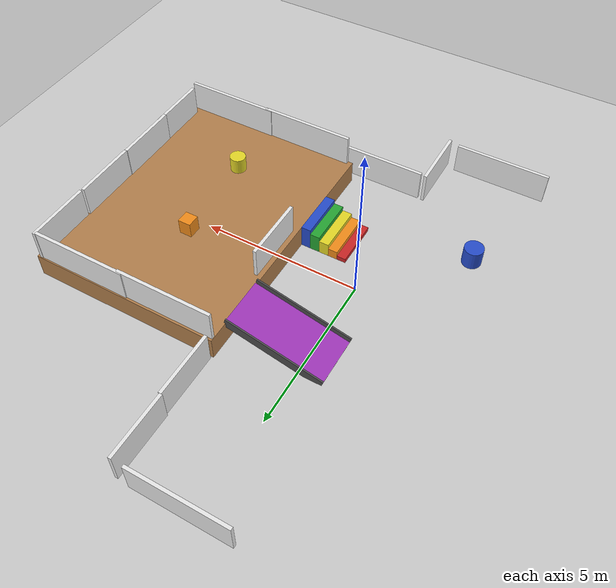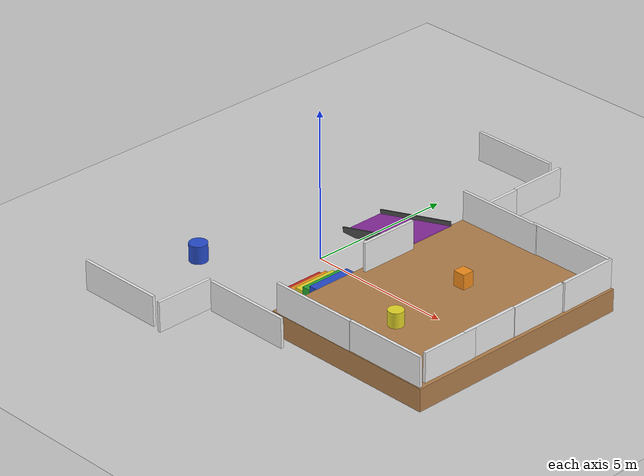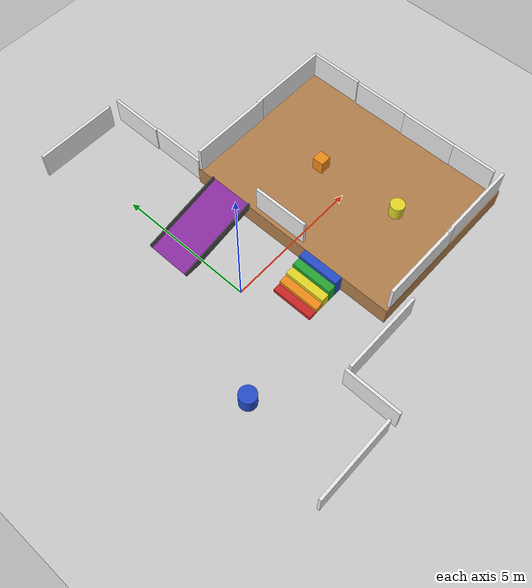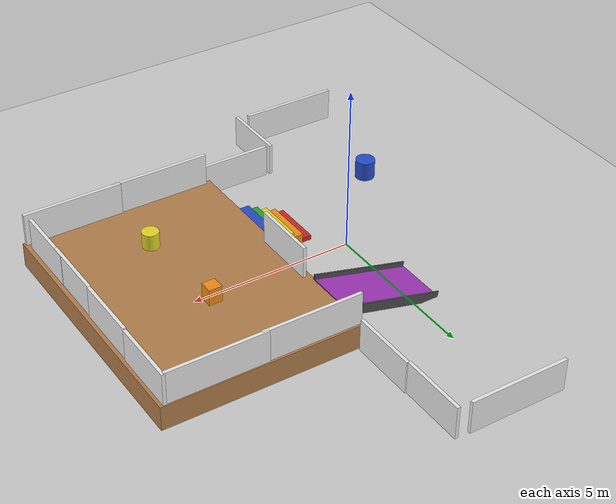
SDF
<sdf version="1.7">
 <world name="two_floor_test">
  <model name="ground_plane">
   <static>1</static>
   <link name="link">
    <collision name="collision">
     <geometry><plane><normal>0 0 1</normal><size>20 20</size></plane></geometry>
     <surface><friction><ode><mu>100</mu><mu2>50</mu2></ode></friction></surface>
    </collision>
    <visual name="visual">
     <cast_shadows>0</cast_shadows>
     <geometry><plane><normal>0 0 1</normal><size>20 20</size></plane></geometry>
     <material>
      <script><uri>file://media/materials/scripts/gazebo.material</uri><name>Gazebo/Grey</name></script>
     </material>
    </visual>
   </link>
  </model>
  <model name="second_floor">
   <static>1</static>
   <pose>5.19898 0 0.375 0 -0 0</pose>
   <link name="link">
    <collision name="collision">
     <geometry><box><size>6 8 0.75</size></box></geometry>
     <surface><friction><ode><mu>100</mu><mu2>50</mu2></ode></friction></surface>
    </collision>
    <visual name="visual">
     <geometry><box><size>6 8 0.75</size></box></geometry>
     <material>
      <script><uri>file://media/materials/scripts/gazebo.material</uri><name>Gazebo/Wood</name></script>
     </material>
    </visual>
   </link>
  </model>
  <model name="stair_step_1">
   <static>1</static>
   <pose>0.865636 -1.50044 0.075 0 -0 0</pose>
   <link name="link">
    <collision name="collision">
     <geometry><box><size>0.3 1.5 0.15</size></box></geometry>
     <surface><friction><ode><mu>100</mu><mu2>50</mu2></ode></friction></surface>
    </collision>
    <visual name="visual">
     <geometry><box><size>0.3 1.5 0.15</size></box></geometry>
     <material>
      <script><uri>file://media/materials/scripts/gazebo.material</uri><name>Gazebo/Red</name></script>
     </material>
    </visual>
   </link>
  </model>
  <model name="stair_step_2">
   <static>1</static>
   <pose>1.14738 -1.5 0.15 0 -0 0</pose>
   <link name="link">
    <collision name="collision">
     <geometry><box><size>0.3 1.5 0.3</size></box></geometry>
     <surface><friction><ode><mu>100</mu><mu2>50</mu2></ode></friction></surface>
    </collision>
    <visual name="visual">
     <geometry><box><size>0.3 1.5 0.3</size></box></geometry>
     <material>
      <script><uri>file://media/materials/scripts/gazebo.material</uri><name>Gazebo/Orange</name></script>
     </material>
    </visual>
   </link>
  </model>
  <model name="stair_step_3">
   <static>1</static>
   <pose>1.44603 -1.5 0.225 0 -0 0</pose>
   <link name="link">
    <collision name="collision">
     <geometry><box><size>0.3 1.5 0.45</size></box></geometry>
     <surface><friction><ode><mu>100</mu><mu2>50</mu2></ode></friction></surface>
    </collision>
    <visual name="visual">
     <geometry><box><size>0.3 1.5 0.45</size></box></geometry>
     <material>
      <script><uri>file://media/materials/scripts/gazebo.material</uri><name>Gazebo/Yellow</name></script>
     </material>
    </visual>
   </link>
  </model>
  <model name="stair_step_4">
   <static>1</static>
   <pose>1.7549 -1.4988 0.3 0 -0 0</pose>
   <link name="link">
    <collision name="collision">
     <geometry><box><size>0.3 1.5 0.6</size></box></geometry>
     <surface><friction><ode><mu>100</mu><mu2>50</mu2></ode></friction></surface>
    </collision>
    <visual name="visual">
     <geometry><box><size>0.3 1.5 0.6</size></box></geometry>
     <material>
      <script><uri>file://media/materials/scripts/gazebo.material</uri><name>Gazebo/Green</name></script>
     </material>
    </visual>
   </link>
  </model>
  <model name="stair_step_5">
   <static>1</static>
   <pose>2.05374 -1.49882 0.375 0 -0 0</pose>
   <link name="link">
    <collision name="collision">
     <geometry><box><size>0.3 1.5 0.75</size></box></geometry>
     <surface><friction><ode><mu>100</mu><mu2>50</mu2></ode></friction></surface>
    </collision>
    <visual name="visual">
     <geometry><box><size>0.3 1.5 0.75</size></box></geometry>
     <material>
      <script><uri>file://media/materials/scripts/gazebo.material</uri><name>Gazebo/Blue</name></script>
     </material>
    </visual>
   </link>
  </model>
  <model name="ramp">
   <static>1</static>
   <pose>0.75 2.5 0.375 0 -0.245 0</pose>
   <link name="link">
    <collision name="collision">
     <geometry><box><size>3.09 1.5 0.05</size></box></geometry>
     <surface><friction><ode><mu>100</mu><mu2>50</mu2></ode></friction></surface>
    </collision>
    <visual name="visual">
     <geometry><box><size>3.09 1.5 0.05</size></box></geometry>
     <material>
      <script><uri>file://media/materials/scripts/gazebo.material</uri><name>Gazebo/Purple</name></script>
     </material>
    </visual>
   </link>
  </model>
  <model name="ramp_wall_left">
   <static>1</static>
   <pose>0.75 1.7 0.375 0 -0.245 0</pose>
   <link name="link">
    <collision name="collision"><geometry><box><size>3.09 0.05 0.3</size></box></geometry></collision>
    <visual name="visual">
     <geometry><box><size>3.09 0.05 0.3</size></box></geometry>
     <material>
      <script><uri>file://media/materials/scripts/gazebo.material</uri><name>Gazebo/DarkGrey</name></script>
     </material>
    </visual>
   </link>
  </model>
  <model name="ramp_wall_right">
   <static>1</static>
   <pose>0.75 3.3 0.375 0 -0.245 0</pose>
   <link name="link">
    <collision name="collision"><geometry><box><size>3.09 0.05 0.3</size></box></geometry></collision>
    <visual name="visual">
     <geometry><box><size>3.09 0.05 0.3</size></box></geometry>
     <material>
      <script><uri>file://media/materials/scripts/gazebo.material</uri><name>Gazebo/DarkGrey</name></script>
     </material>
    </visual>
   </link>
  </model>
  <model name="obstacle_cylinder">
   <static>1</static>
   <pose>-2.50786 -2.66536 0.3 0 -0 0</pose>
   <link name="link">
    <collision name="collision">
     <geometry><cylinder><radius>0.3</radius><length>0.6</length></cylinder></geometry>
    </collision>
    <visual name="visual">
     <geometry><cylinder><radius>0.3</radius><length>0.6</length></cylinder></geometry>
     <material>
      <script><uri>file://media/materials/scripts/gazebo.material</uri><name>Gazebo/Blue</name></script>
     </material>
    </visual>
   </link>
  </model>
  <model name="obstacle_2f_box">
   <static>1</static>
   <pose>5 1 1 0 -0 0</pose>
   <link name="link">
    <collision name="collision"><geometry><box><size>0.4 0.4 0.5</size></box></geometry></collision>
    <visual name="visual">
     <geometry><box><size>0.4 0.4 0.5</size></box></geometry>
     <material>
      <script><uri>file://media/materials/scripts/gazebo.material</uri><name>Gazebo/Orange</name></script>
     </material>
    </visual>
   </link>
  </model>
  <model name="obstacle_2f_cylinder">
   <static>1</static>
   <pose>5.22236 -1.99827 1 0 -0 0</pose>
   <link name="link">
    <collision name="collision">
     <geometry><cylinder><radius>0.25</radius><length>0.5</length></cylinder></geometry>
    </collision>
    <visual name="visual">
     <geometry><cylinder><radius>0.25</radius><length>0.5</length></cylinder></geometry>
     <material>
      <script><uri>file://media/materials/scripts/gazebo.material</uri><name>Gazebo/Yellow</name></script>
     </material>
    </visual>
   </link>
  </model>
  <model name="wall_stairs">
   <static>1</static>
   <pose>1.5 -4.3782 0.5 0 -0 0</pose>
   <link name="link">
    <collision name="collision"><geometry><box><size>3 0.1 1</size></box></geometry></collision>
    <visual name="visual">
     <geometry><box><size>3 0.1 1</size></box></geometry>
     <material>
      <script><uri>file://media/materials/scripts/gazebo.material</uri><name>Gazebo/White</name></script>
     </material>
    </visual>
   </link>
  </model>
  <model name="wall_ramp">
   <static>1</static>
   <pose>2.30626 5.05536 0.5 0 -0 0</pose>
   <link name="link">
    <collision name="collision"><geometry><box><size>0.1 2 1</size></box></geometry></collision>
    <visual name="visual">
     <geometry><box><size>0.1 2 1</size></box></geometry>
     <material>
      <script><uri>file://media/materials/scripts/gazebo.material</uri><name>Gazebo/White</name></script>
     </material>
    </visual>
   </link>
  </model>
  <model name="wall_ramp_clone">
   <static>1</static>
   <pose>2.26766 7.05725 0.5 0 -0 0</pose>
   <link name="link">
    <collision name="collision"><geometry><box><size>0.1 2 1</size></box></geometry></collision>
    <visual name="visual">
     <geometry><box><size>0.1 2 1</size></box></geometry>
     <material>
      <script><uri>file://media/materials/scripts/gazebo.material</uri><name>Gazebo/White</name></script>
     </material>
    </visual>
   </link>
  </model>
  <model name="wall_stairs_clone">
   <static>1</static>
   <pose>-1.9839 -6.18957 0.5 0 -0 0</pose>
   <link name="link">
    <collision name="collision"><geometry><box><size>3 0.1 1</size></box></geometry></collision>
    <visual name="visual">
     <geometry><box><size>3 0.1 1</size></box></geometry>
     <material>
      <script><uri>file://media/materials/scripts/gazebo.material</uri><name>Gazebo/White</name></script>
     </material>
    </visual>
   </link>
  </model>
  <model name="wall_stairs_clone_1">
   <static>1</static>
   <pose>0.380784 8.04789 0.5 0 -0 0</pose>
   <link name="link">
    <collision name="collision"><geometry><box><size>3 0.1 1</size></box></geometry></collision>
    <visual name="visual">
     <geometry><box><size>3 0.1 1</size></box></geometry>
     <material>
      <script><uri>file://media/materials/scripts/gazebo.material</uri><name>Gazebo/White</name></script>
     </material>
    </visual>
   </link>
  </model>
  <model name="wall_ramp_clone_2_clone_0">
   <static>1</static>
   <pose>-0.152199 -5.31861 0.5 0 -0 0</pose>
   <link name="link">
    <collision name="collision"><geometry><box><size>0.1 2 1</size></box></geometry></collision>
    <visual name="visual">
     <geometry><box><size>0.1 2 1</size></box></geometry>
     <material>
      <script><uri>file://media/materials/scripts/gazebo.material</uri><name>Gazebo/White</name></script>
     </material>
    </visual>
   </link>
  </model>
  <model name="wall_ramp_clone_0">
   <static>1</static>
   <pose>8.05217 2.9744 1.2247 0 -0 0</pose>
   <link name="link">
    <collision name="collision"><geometry><box><size>0.1 2 1</size></box></geometry></collision>
    <visual name="visual">
     <geometry><box><size>0.1 2 1</size></box></geometry>
     <material>
      <script><uri>file://media/materials/scripts/gazebo.material</uri><name>Gazebo/White</name></script>
     </material>
    </visual>
   </link>
  </model>
  <model name="wall_ramp_clone_0_clone">
   <static>1</static>
   <pose>8.0258 0.921 1.2226 0 -0 0</pose>
   <link name="link">
    <collision name="collision"><geometry><box><size>0.1 2 1</size></box></geometry></collision>
    <visual name="visual">
     <geometry><box><size>0.1 2 1</size></box></geometry>
     <material>
      <script><uri>file://media/materials/scripts/gazebo.material</uri><name>Gazebo/White</name></script>
     </material>
    </visual>
   </link>
  </model>
  <model name="wall_ramp_clone_0_clone_0">
   <static>1</static>
   <pose>8.0082 -1.08373 1.2226 0 -0 0</pose>
   <link name="link">
    <collision name="collision"><geometry><box><size>0.1 2 1</size></box></geometry></collision>
    <visual name="visual">
     <geometry><box><size>0.1 2 1</size></box></geometry>
     <material>
      <script><uri>file://media/materials/scripts/gazebo.material</uri><name>Gazebo/White</name></script>
     </material>
    </visual>
   </link>
  </model>
  <model name="wall_ramp_clone_0_clone_1">
   <static>1</static>
   <pose>8.01786 -2.66714 1.2226 0 -0 0</pose>
   <link name="link">
    <collision name="collision"><geometry><box><size>0.1 2 1</size></box></geometry></collision>
    <visual name="visual">
     <geometry><box><size>0.1 2 1</size></box></geometry>
     <material>
      <script><uri>file://media/materials/scripts/gazebo.material</uri><name>Gazebo/White</name></script>
     </material>
    </visual>
   </link>
  </model>
  <model name="wall_ramp_clone_0_clone_2">
   <static>1</static>
   <pose>2.40032 0.485278 1.2226 0 -0 0</pose>
   <link name="link">
    <collision name="collision"><geometry><box><size>0.1 2 1</size></box></geometry></collision>
    <visual name="visual">
     <geometry><box><size>0.1 2 1</size></box></geometry>
     <material>
      <script><uri>file://media/materials/scripts/gazebo.material</uri><name>Gazebo/White</name></script>
     </material>
    </visual>
   </link>
  </model>
  <model name="wall_stairs_clone_4">
   <static>1</static>
   <pose>3.85826 -3.93843 1.23793 0 -0 0</pose>
   <link name="link">
    <collision name="collision"><geometry><box><size>3 0.1 1</size></box></geometry></collision>
    <visual name="visual">
     <geometry><box><size>3 0.1 1</size></box></geometry>
     <material>
      <script><uri>file://media/materials/scripts/gazebo.material</uri><name>Gazebo/White</name></script>
     </material>
    </visual>
   </link>
  </model>
  <model name="wall_stairs_clone_4_clone">
   <static>1</static>
   <pose>6.6341 -3.91373 1.23793 0 -0 0</pose>
   <link name="link">
    <collision name="collision"><geometry><box><size>3 0.1 1</size></box></geometry></collision>
    <visual name="visual">
     <geometry><box><size>3 0.1 1</size></box></geometry>
     <material>
      <script><uri>file://media/materials/scripts/gazebo.material</uri><name>Gazebo/White</name></script>
     </material>
    </visual>
   </link>
  </model>
  <model name="wall_stairs_clone_4_clone_0">
   <static>1</static>
   <pose>6.53102 3.91083 1.23793 0 -0 0</pose>
   <link name="link">
    <collision name="collision"><geometry><box><size>3 0.1 1</size></box></geometry></collision>
    <visual name="visual">
     <geometry><box><size>3 0.1 1</size></box></geometry>
     <material>
      <script><uri>file://media/materials/scripts/gazebo.material</uri><name>Gazebo/White</name></script>
     </material>
    </visual>
   </link>
  </model>
  <model name="wall_stairs_clone_4_clone_1">
   <static>1</static>
   <pose>3.71575 3.88105 1.23793 0 -0 0</pose>
   <link name="link">
    <collision name="collision"><geometry><box><size>3 0.1 1</size></box></geometry></collision>
    <visual name="visual">
     <geometry><box><size>3 0.1 1</size></box></geometry>
     <material>
      <script><uri>file://media/materials/scripts/gazebo.material</uri><name>Gazebo/White</name></script>
     </material>
    </visual>
   </link>
  </model>
 </world>
</sdf>
